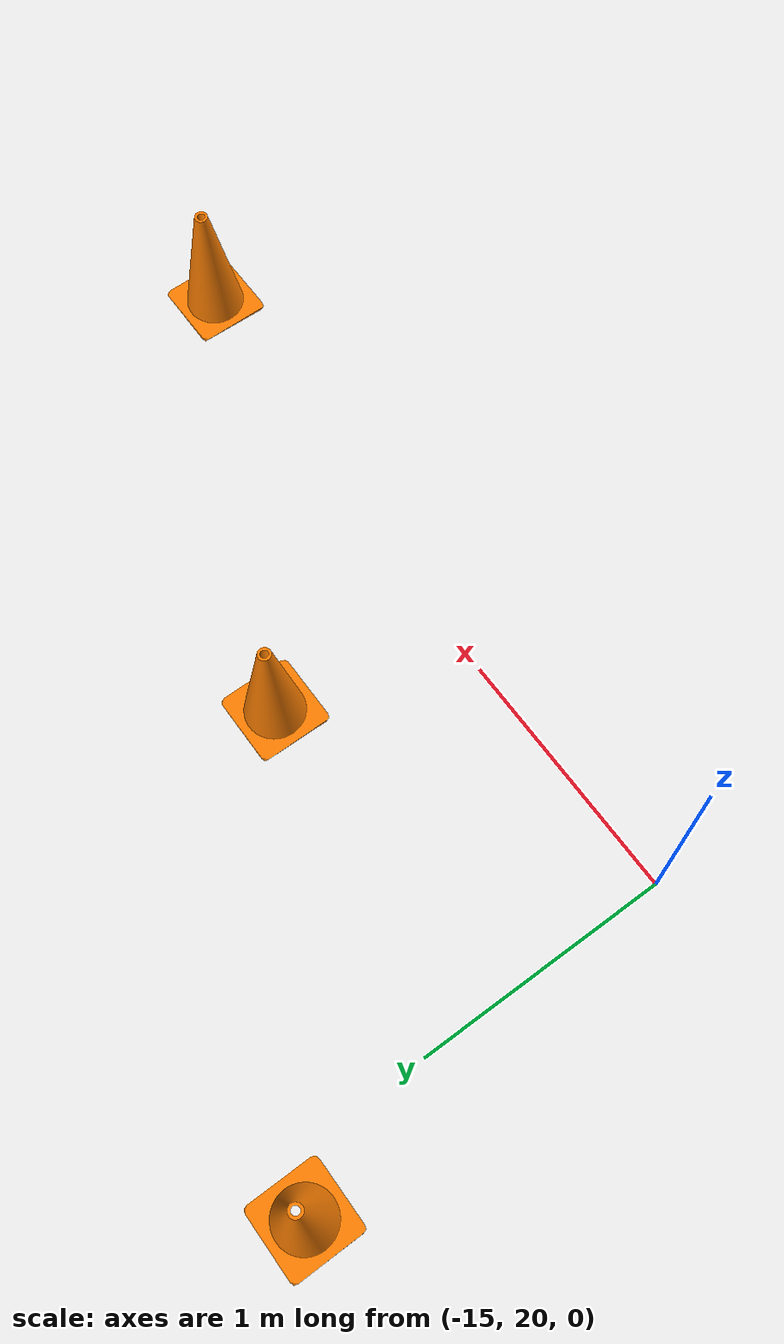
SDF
<sdf version="1.7">
 <world name="IARRC Urban">
  <model name="TallerCone_clone_81">
   <link name="link_0">
    <inertial>
     <mass>0.068</mass>
     <inertia>
      <ixx>0.000367263</ixx>
      <ixy>0</ixy>
      <ixz>0</ixz>
      <iyy>0.000367263</iyy>
      <iyz>0</iyz>
      <izz>0.000165927</izz>
     </inertia>
    </inertial>
    <visual name="visual">
     <geometry><mesh><uri>model://TallerCone/traffic_cone.stl</uri><scale>0.01 0.01 0.01</scale></mesh></geometry>
     <material>
      <lighting>1</lighting>
      <script><uri>file://media/materials/scripts/gazebo.material</uri><name>Gazebo/Grey</name></script>
      <ambient>0.4 0.2 0 1</ambient>
      <diffuse>1 0.5 0 1</diffuse>
      <specular>0.01 0.01 0.01 1</specular>
      <emissive>0 0 0 1</emissive>
     </material>
    </visual>
    <collision name="collision">
     <geometry><mesh><uri>model://TallerCone/traffic_cone.stl</uri></mesh></geometry>
     <surface>
      <friction>
       <ode><mu>1</mu><mu2>1</mu2><fdir1>0 0 0</fdir1><slip1>0</slip1><slip2>0</slip2></ode>
       <torsional>
        <coefficient>1</coefficient>
        <patch_radius>0</patch_radius>
        <surface_radius>0</surface_radius>
        <use_patch_radius>1</use_patch_radius>
        <ode><slip>0</slip></ode>
       </torsional>
      </friction>
      <bounce><restitution_coefficient>0</restitution_coefficient><threshold>1e+06</threshold></bounce>
      <contact>
       <collide_without_contact>0</collide_without_contact>
       <collide_without_contact_bitmask>1</collide_without_contact_bitmask>
       <collide_bitmask>1</collide_bitmask>
       <ode>
        <soft_cfm>0</soft_cfm>
        <soft_erp>0.2</soft_erp>
        <kp>1e+13</kp>
        <kd>1</kd>
        <max_vel>0.01</max_vel>
        <min_depth>0</min_depth>
       </ode>
       <bullet>
        <split_impulse>1</split_impulse>
        <split_impulse_penetration_threshold>-0.01</split_impulse_penetration_threshold>
        <soft_cfm>0</soft_cfm>
        <soft_erp>0.2</soft_erp>
        <kp>1e+13</kp>
        <kd>1</kd>
       </bullet>
      </contact>
     </surface>
    </collision>
   </link>
   <static>1</static>
   <pose>-12.072 19.8772 -0.034283 0 -0 0</pose>
  </model>
  <model name="TallerCone_clone_82">
   <link name="link_0">
    <inertial>
     <mass>0.068</mass>
     <inertia>
      <ixx>0.000367263</ixx>
      <ixy>0</ixy>
      <ixz>0</ixz>
      <iyy>0.000367263</iyy>
      <iyz>0</iyz>
      <izz>0.000165927</izz>
     </inertia>
    </inertial>
    <visual name="visual">
     <geometry><mesh><uri>model://TallerCone/traffic_cone.stl</uri><scale>0.01 0.01 0.01</scale></mesh></geometry>
     <material>
      <lighting>1</lighting>
      <script><uri>file://media/materials/scripts/gazebo.material</uri><name>Gazebo/Grey</name></script>
      <ambient>0.4 0.2 0 1</ambient>
      <diffuse>1 0.5 0 1</diffuse>
      <specular>0.01 0.01 0.01 1</specular>
      <emissive>0 0 0 1</emissive>
     </material>
    </visual>
    <collision name="collision">
     <geometry><mesh><uri>model://TallerCone/traffic_cone.stl</uri></mesh></geometry>
     <surface>
      <friction>
       <ode><mu>1</mu><mu2>1</mu2><fdir1>0 0 0</fdir1><slip1>0</slip1><slip2>0</slip2></ode>
       <torsional>
        <coefficient>1</coefficient>
        <patch_radius>0</patch_radius>
        <surface_radius>0</surface_radius>
        <use_patch_radius>1</use_patch_radius>
        <ode><slip>0</slip></ode>
       </torsional>
      </friction>
      <bounce><restitution_coefficient>0</restitution_coefficient><threshold>1e+06</threshold></bounce>
      <contact>
       <collide_without_contact>0</collide_without_contact>
       <collide_without_contact_bitmask>1</collide_without_contact_bitmask>
       <collide_bitmask>1</collide_bitmask>
       <ode>
        <soft_cfm>0</soft_cfm>
        <soft_erp>0.2</soft_erp>
        <kp>1e+13</kp>
        <kd>1</kd>
        <max_vel>0.01</max_vel>
        <min_depth>0</min_depth>
       </ode>
       <bullet>
        <split_impulse>1</split_impulse>
        <split_impulse_penetration_threshold>-0.01</split_impulse_penetration_threshold>
        <soft_cfm>0</soft_cfm>
        <soft_erp>0.2</soft_erp>
        <kp>1e+13</kp>
        <kd>1</kd>
       </bullet>
      </contact>
     </surface>
    </collision>
   </link>
   <static>1</static>
   <pose>-13.686 20.6957 -0.034283 0 -0 0</pose>
  </model>
  <model name="TallerCone_clone_83">
   <link name="link_0">
    <inertial>
     <mass>0.068</mass>
     <inertia>
      <ixx>0.000367263</ixx>
      <ixy>0</ixy>
      <ixz>0</ixz>
      <iyy>0.000367263</iyy>
      <iyz>0</iyz>
      <izz>0.000165927</izz>
     </inertia>
    </inertial>
    <visual name="visual">
     <geometry><mesh><uri>model://TallerCone/traffic_cone.stl</uri><scale>0.01 0.01 0.01</scale></mesh></geometry>
     <material>
      <lighting>1</lighting>
      <script><uri>file://media/materials/scripts/gazebo.material</uri><name>Gazebo/Grey</name></script>
      <ambient>0.4 0.2 0 1</ambient>
      <diffuse>1 0.5 0 1</diffuse>
      <specular>0.01 0.01 0.01 1</specular>
      <emissive>0 0 0 1</emissive>
     </material>
    </visual>
    <collision name="collision">
     <geometry><mesh><uri>model://TallerCone/traffic_cone.stl</uri></mesh></geometry>
     <surface>
      <friction>
       <ode><mu>1</mu><mu2>1</mu2><fdir1>0 0 0</fdir1><slip1>0</slip1><slip2>0</slip2></ode>
       <torsional>
        <coefficient>1</coefficient>
        <patch_radius>0</patch_radius>
        <surface_radius>0</surface_radius>
        <use_patch_radius>1</use_patch_radius>
        <ode><slip>0</slip></ode>
       </torsional>
      </friction>
      <bounce><restitution_coefficient>0</restitution_coefficient><threshold>1e+06</threshold></bounce>
      <contact>
       <collide_without_contact>0</collide_without_contact>
       <collide_without_contact_bitmask>1</collide_without_contact_bitmask>
       <collide_bitmask>1</collide_bitmask>
       <ode>
        <soft_cfm>0</soft_cfm>
        <soft_erp>0.2</soft_erp>
        <kp>1e+13</kp>
        <kd>1</kd>
        <max_vel>0.01</max_vel>
        <min_depth>0</min_depth>
       </ode>
       <bullet>
        <split_impulse>1</split_impulse>
        <split_impulse_penetration_threshold>-0.01</split_impulse_penetration_threshold>
        <soft_cfm>0</soft_cfm>
        <soft_erp>0.2</soft_erp>
        <kp>1e+13</kp>
        <kd>1</kd>
       </bullet>
      </contact>
     </surface>
    </collision>
   </link>
   <static>1</static>
   <pose>-15.178 21.6097 -0.034283 0 -0 0</pose>
  </model>
 </world>
</sdf>
